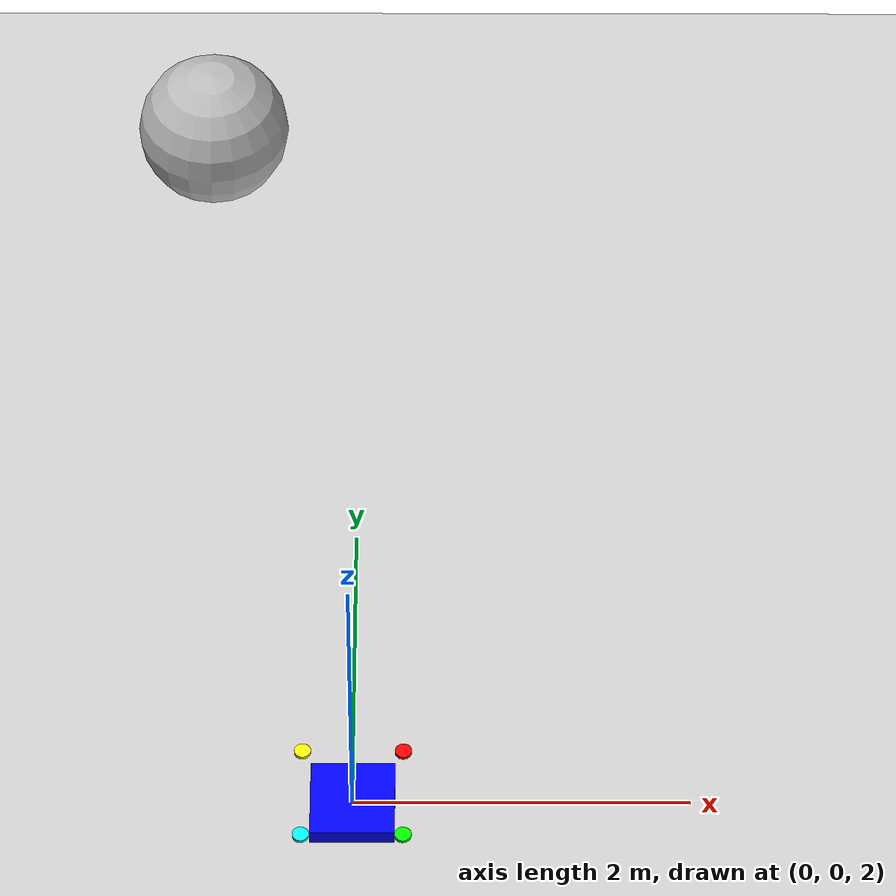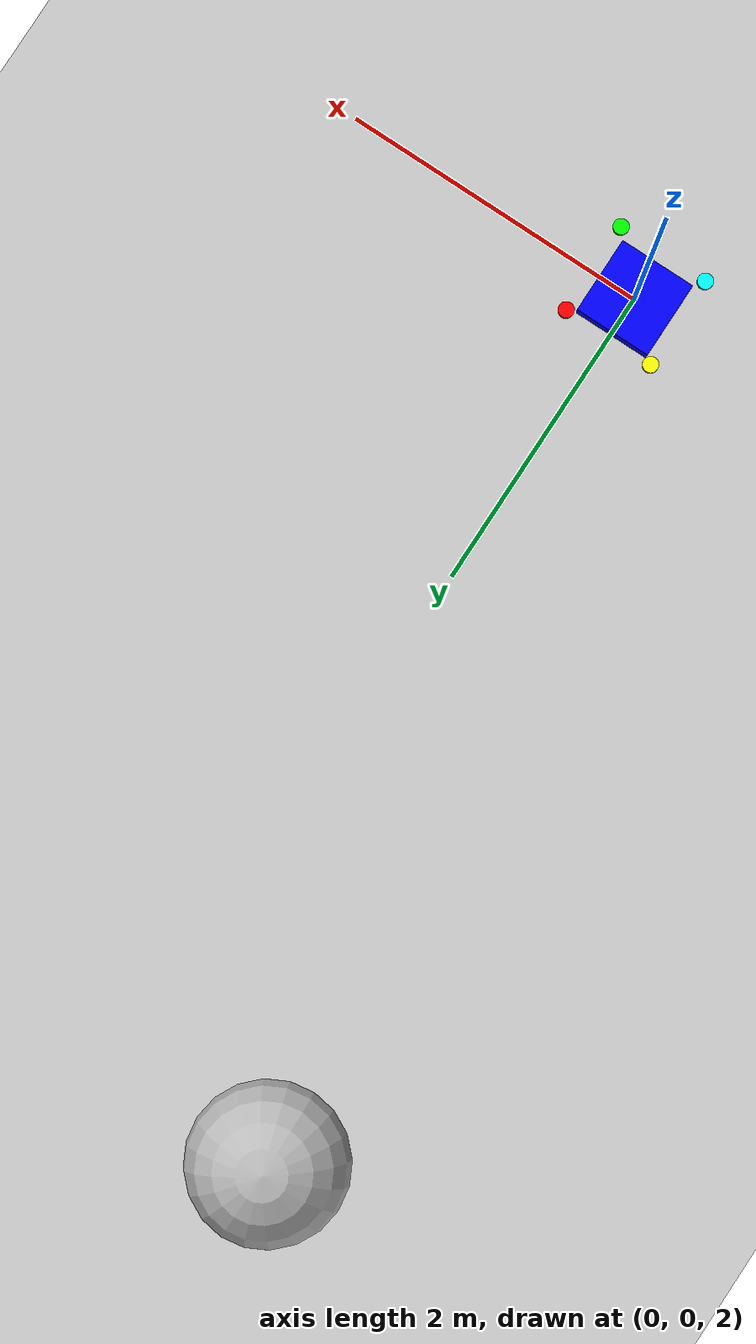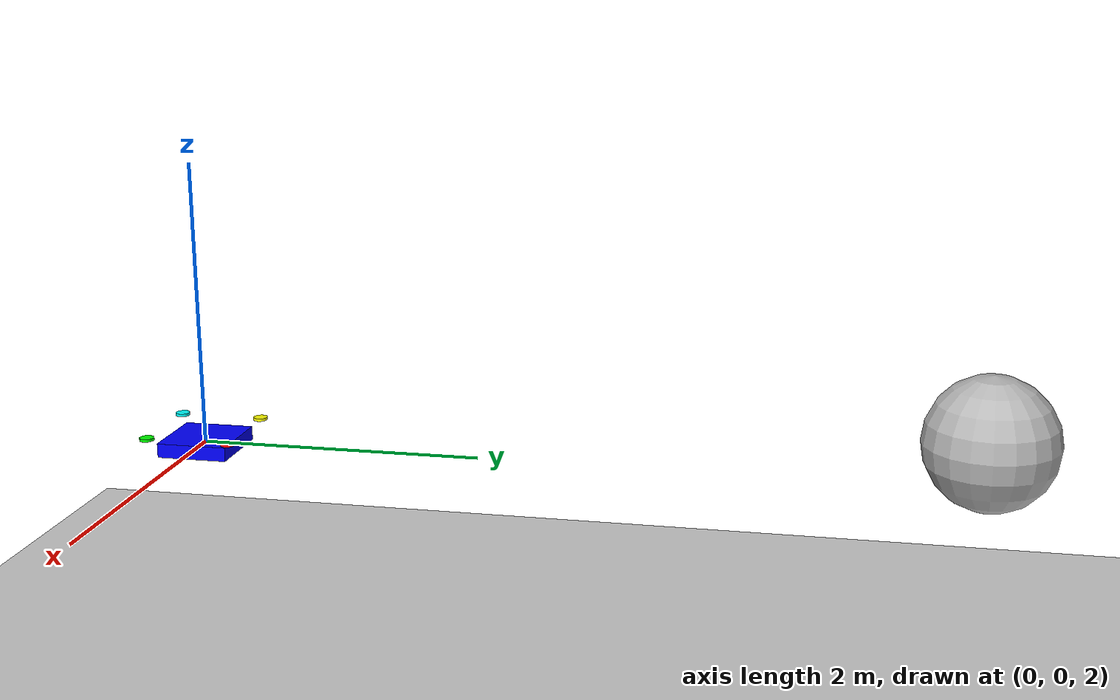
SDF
<sdf version="1.7">
 <world name="forest_world">
  <physics type="ode"><gravity>0 0 0</gravity></physics>
  <scene><ambient>0.4 0.4 0.4 1</ambient><background>0.7 0.8 1 1</background></scene>
  <plugin filename="gz-sim-physics-system" name="gz::sim::systems::Physics"/>
  <plugin filename="gz-sim-sensors-system" name="gz::sim::systems::Sensors">
   <render_engine>ogre2</render_engine>
  </plugin>
  <plugin filename="gz-sim-scene-broadcaster-system" name="gz::sim::systems::SceneBroadcaster"/>
  <include><uri>https://fuel.gazebosim.org/1.0/OpenRobotics/models/Sun</uri></include>
  <include><uri>https://fuel.gazebosim.org/1.0/OpenRobotics/models/Ground Plane</uri></include>
  <model name="fire">
   <static>true</static>
   <pose>-1 5.5 2 0 0 0</pose>
   <link name="fire_link">
    <collision name="fire_collision"><geometry><sphere><radius>0.5</radius></sphere></geometry></collision>
    <visual name="fire_visual">
     <geometry><sphere><radius>0.5</radius></sphere></geometry>
     <material><emissive>1 0.2 0 1</emissive></material>
    </visual>
   </link>
   <plugin filename="libfire_emitter_plugin.so" name="FireEmitterPlugin"/>
  </model>
  <model name="drone">
   <static>false</static>
   <pose>0 0 2 0 0 0</pose>
   <link name="base_link">
    <inertial><mass>1.0</mass><inertia><ixx>0.1</ixx><iyy>0.1</iyy><izz>0.1</izz></inertia></inertial>
    <gravity>0</gravity>
    <collision name="collision"><geometry><box><size>0.5 0.5 0.1</size></box></geometry></collision>
    <visual name="visual">
     <geometry><box><size>0.5 0.5 0.1</size></box></geometry>
     <material><ambient>0 0 1 1</ambient></material>
    </visual>
    <sensor name="camera_sensor" type="camera">
     <always_on>1</always_on>
     <update_rate>30</update_rate>
     <visualize>true</visualize>
     <camera>
      <horizontal_fov>1.047</horizontal_fov>
      <image><width>640</width><height>480</height><format>R8G8B8</format></image>
      <clip><near>0.1</near><far>100</far></clip>
     </camera>
     <pose>0 0 0.1 0 0 0</pose>
    </sensor>
    <sensor name="thermal_camera" type="thermal_camera">
     <always_on>1</always_on>
     <update_rate>15</update_rate>
     <visualize>true</visualize>
     <thermal_camera>
      <horizontal_fov>1.047</horizontal_fov>
      <image><width>320</width><height>240</height><format>L8</format></image>
      <clip><near>0.1</near><far>100</far></clip>
      <noise><type>gaussian</type><mean>0.0</mean><stddev>0.007</stddev></noise>
     </thermal_camera>
     <pose>0.1 0 0.1 0 0 0</pose>
    </sensor>
   </link>
   <link name="rotor_1">
    <pose>0.3 0.3 0.1 0 0 0</pose>
    <visual name="visual">
     <geometry><cylinder><radius>0.05</radius><length>0.02</length></cylinder></geometry>
     <material><ambient>1 0 0 1</ambient></material>
    </visual>
   </link>
   <joint name="rotor_1_joint" type="fixed"><parent>base_link</parent><child>rotor_1</child></joint>
   <link name="rotor_2">
    <pose>-0.3 0.3 0.1 0 0 0</pose>
    <visual name="visual">
     <geometry><cylinder><radius>0.05</radius><length>0.02</length></cylinder></geometry>
     <material><ambient>1 1 0 1</ambient></material>
    </visual>
   </link>
   <joint name="rotor_2_joint" type="fixed"><parent>base_link</parent><child>rotor_2</child></joint>
   <link name="rotor_3">
    <pose>0.3 -0.3 0.1 0 0 0</pose>
    <visual name="visual">
     <geometry><cylinder><radius>0.05</radius><length>0.02</length></cylinder></geometry>
     <material><ambient>0 1 0 1</ambient></material>
    </visual>
   </link>
   <joint name="rotor_3_joint" type="fixed"><parent>base_link</parent><child>rotor_3</child></joint>
   <link name="rotor_4">
    <pose>-0.3 -0.3 0.1 0 0 0</pose>
    <visual name="visual">
     <geometry><cylinder><radius>0.05</radius><length>0.02</length></cylinder></geometry>
     <material><ambient>0 1 1 1</ambient></material>
    </visual>
   </link>
   <joint name="rotor_4_joint" type="fixed"><parent>base_link</parent><child>rotor_4</child></joint>
   <plugin filename="libfire_detection_plugin.so" name="FireDetectionPlugin"/>
   <plugin filename="libautonomous_drone_plugin.so" name="AutonomousDrone"/>
  </model>
 </world>
</sdf>
